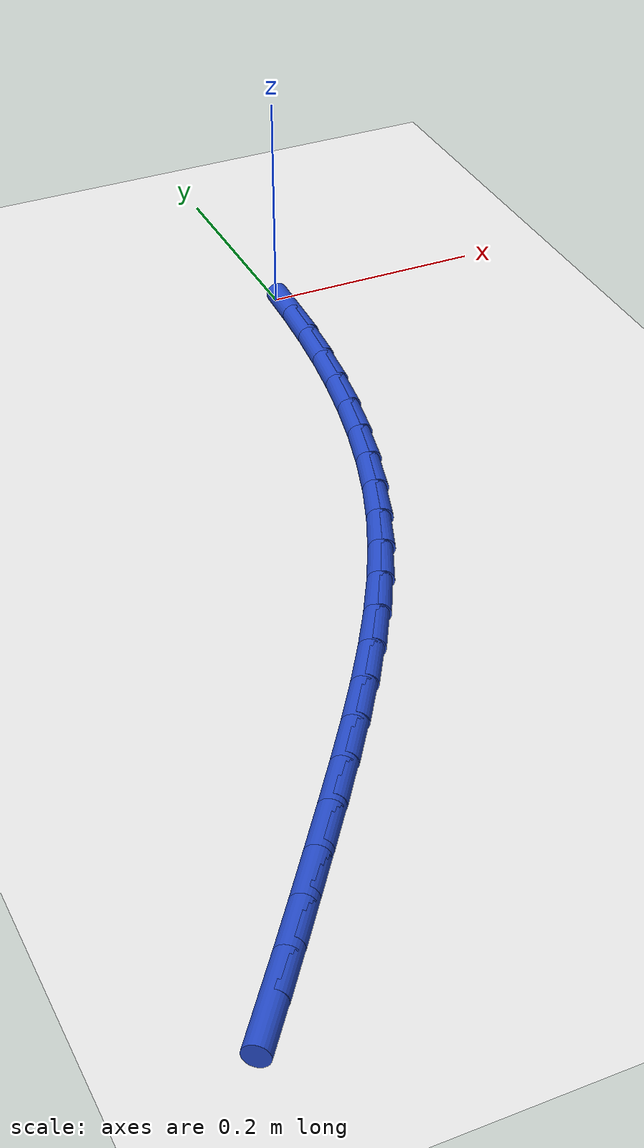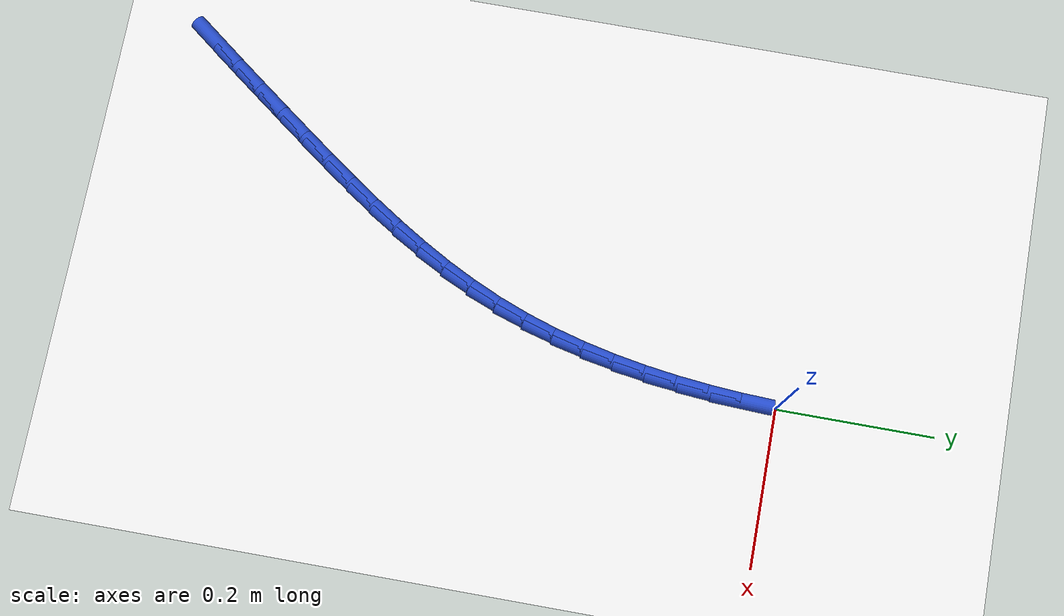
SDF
<sdf version="1.6">
 <world name="default">
  <model name="ground_plane">
   <static>1</static>
   <link name="link">
    <collision name="collision">
     <geometry><plane><normal>0 0 1</normal><size>100 100</size></plane></geometry>
     <surface><friction><ode><mu>100</mu><mu2>50</mu2></ode></friction></surface>
    </collision>
    <visual name="visual">
     <cast_shadows>0</cast_shadows>
     <geometry><plane><normal>0 0 1</normal><size>100 100</size></plane></geometry>
     <material>
      <script><uri>file://media/materials/scripts/gazebo.material</uri><name>Gazebo/WhiteGlow</name></script>
     </material>
    </visual>
   </link>
  </model>
  <model name="line">
   <link name="link_149">
    <pose>-0.34290889383774265 -0.7830838202109409 0.01 0 1.57 0.9205114999771896</pose>
    <collision name="collision">
     <geometry><cylinder><radius>0.01</radius><length>0.08</length></cylinder></geometry>
    </collision>
    <visual name="visual">
     <material>
      <script><name>Gazebo/Blue</name><uri>file://media/materials/scripts/gazebo.material</uri></script>
     </material>
     <geometry><cylinder><radius>0.01</radius><length>0.08</length></cylinder></geometry>
    </visual>
   </link>
   <link name="link_150">
    <pose>-0.3162335976058807 -0.7480149205997997 0.01 0 1.57 0.928915914269752</pose>
    <collision name="collision">
     <geometry><cylinder><radius>0.01</radius><length>0.08</length></cylinder></geometry>
    </collision>
    <visual name="visual">
     <material>
      <script><name>Gazebo/Blue</name><uri>file://media/materials/scripts/gazebo.material</uri></script>
     </material>
     <geometry><cylinder><radius>0.01</radius><length>0.08</length></cylinder></geometry>
    </visual>
   </link>
   <link name="link_151">
    <pose>-0.2899848914134119 -0.7128982197178919 0.01 0 1.57 0.9338424383051132</pose>
    <collision name="collision">
     <geometry><cylinder><radius>0.01</radius><length>0.08</length></cylinder></geometry>
    </collision>
    <visual name="visual">
     <material>
      <script><name>Gazebo/Blue</name><uri>file://media/materials/scripts/gazebo.material</uri></script>
     </material>
     <geometry><cylinder><radius>0.01</radius><length>0.08</length></cylinder></geometry>
    </visual>
   </link>
   <link name="link_152">
    <pose>-0.26412248459578164 -0.6779405091965586 0.01 0 1.57 0.9362782965477401</pose>
    <collision name="collision">
     <geometry><cylinder><radius>0.01</radius><length>0.08</length></cylinder></geometry>
    </collision>
    <visual name="visual">
     <material>
      <script><name>Gazebo/Blue</name><uri>file://media/materials/scripts/gazebo.material</uri></script>
     </material>
     <geometry><cylinder><radius>0.01</radius><length>0.08</length></cylinder></geometry>
    </visual>
   </link>
   <link name="link_153">
    <pose>-0.2386315818441407 -0.6433088360417636 0.01 0 1.57 0.9421647737741907</pose>
    <collision name="collision">
     <geometry><cylinder><radius>0.01</radius><length>0.08</length></cylinder></geometry>
    </collision>
    <visual name="visual">
     <material>
      <script><name>Gazebo/Blue</name><uri>file://media/materials/scripts/gazebo.material</uri></script>
     </material>
     <geometry><cylinder><radius>0.01</radius><length>0.08</length></cylinder></geometry>
    </visual>
   </link>
   <link name="link_154">
    <pose>-0.21364491481321773 -0.6089402679656787 0.01 0 1.57 0.9538058838272021</pose>
    <collision name="collision">
     <geometry><cylinder><radius>0.01</radius><length>0.08</length></cylinder></geometry>
    </collision>
    <visual name="visual">
     <material>
      <script><name>Gazebo/Blue</name><uri>file://media/materials/scripts/gazebo.material</uri></script>
     </material>
     <geometry><cylinder><radius>0.01</radius><length>0.08</length></cylinder></geometry>
    </visual>
   </link>
   <link name="link_155">
    <pose>-0.18934815535599422 -0.5746893443811517 0.01 0 1.57 0.9713988659198854</pose>
    <collision name="collision">
     <geometry><cylinder><radius>0.01</radius><length>0.08</length></cylinder></geometry>
    </collision>
    <visual name="visual">
     <material>
      <script><name>Gazebo/Blue</name><uri>file://media/materials/scripts/gazebo.material</uri></script>
     </material>
     <geometry><cylinder><radius>0.01</radius><length>0.08</length></cylinder></geometry>
    </visual>
   </link>
   <link name="link_156">
    <pose>-0.16592704377617376 -0.5404104979934294 0.01 0 1.57 0.9951212083077166</pose>
    <collision name="collision">
     <geometry><cylinder><radius>0.01</radius><length>0.08</length></cylinder></geometry>
    </collision>
    <visual name="visual">
     <material>
      <script><name>Gazebo/Blue</name><uri>file://media/materials/scripts/gazebo.material</uri></script>
     </material>
     <geometry><cylinder><radius>0.01</radius><length>0.08</length></cylinder></geometry>
    </visual>
   </link>
   <link name="link_157">
    <pose>-0.14356732037745976 -0.5059581615077582 0.01 0 1.57 1.0251120330388628</pose>
    <collision name="collision">
     <geometry><cylinder><radius>0.01</radius><length>0.08</length></cylinder></geometry>
    </collision>
    <visual name="visual">
     <material>
      <script><name>Gazebo/Blue</name><uri>file://media/materials/scripts/gazebo.material</uri></script>
     </material>
     <geometry><cylinder><radius>0.01</radius><length>0.08</length></cylinder></geometry>
    </visual>
   </link>
   <link name="link_158">
    <pose>-0.12245472546355521 -0.47118676762938455 0.01 0 1.57 1.0614417711965463</pose>
    <collision name="collision">
     <geometry><cylinder><radius>0.01</radius><length>0.08</length></cylinder></geometry>
    </collision>
    <visual name="visual">
     <material>
      <script><name>Gazebo/Blue</name><uri>file://media/materials/scripts/gazebo.material</uri></script>
     </material>
     <geometry><cylinder><radius>0.01</radius><length>0.08</length></cylinder></geometry>
    </visual>
   </link>
   <link name="link_159">
    <pose>-0.10277499933816439 -0.43595074906355624 0.01 0 1.57 1.1040733777698457</pose>
    <collision name="collision">
     <geometry><cylinder><radius>0.01</radius><length>0.08</length></cylinder></geometry>
    </collision>
    <visual name="visual">
     <material>
      <script><name>Gazebo/Blue</name><uri>file://media/materials/scripts/gazebo.material</uri></script>
     </material>
     <geometry><cylinder><radius>0.01</radius><length>0.08</length></cylinder></geometry>
    </visual>
   </link>
   <link name="link_160">
    <pose>-0.08471388230499032 -0.40010453851551914 0.01 0 1.57 1.1528178378580318</pose>
    <collision name="collision">
     <geometry><cylinder><radius>0.01</radius><length>0.08</length></cylinder></geometry>
    </collision>
    <visual name="visual">
     <material>
      <script><name>Gazebo/Blue</name><uri>file://media/materials/scripts/gazebo.material</uri></script>
     </material>
     <geometry><cylinder><radius>0.01</radius><length>0.08</length></cylinder></geometry>
    </visual>
   </link>
   <link name="link_161">
    <pose>-0.06845711466773642 -0.3635025686905202 0.01 0 1.57 1.2061260311801272</pose>
    <collision name="collision">
     <geometry><cylinder><radius>0.01</radius><length>0.08</length></cylinder></geometry>
    </collision>
    <visual name="visual">
     <material>
      <script><name>Gazebo/Blue</name><uri>file://media/materials/scripts/gazebo.material</uri></script>
     </material>
     <geometry><cylinder><radius>0.01</radius><length>0.08</length></cylinder></geometry>
    </visual>
   </link>
   <link name="link_162">
    <pose>-0.05415104065360601 -0.3260270240766237 0.01 0 1.57 1.25798229550556</pose>
    <collision name="collision">
     <geometry><cylinder><radius>0.01</radius><length>0.08</length></cylinder></geometry>
    </collision>
    <visual name="visual">
     <material>
      <script><name>Gazebo/Blue</name><uri>file://media/materials/scripts/gazebo.material</uri></script>
     </material>
     <geometry><cylinder><radius>0.01</radius><length>0.08</length></cylinder></geometry>
    </visual>
   </link>
   <link name="link_163">
    <pose>-0.041752692976208504 -0.2876934458937534 0.01 0 1.57 1.306521426923087</pose>
    <collision name="collision">
     <geometry><cylinder><radius>0.01</radius><length>0.08</length></cylinder></geometry>
    </collision>
    <visual name="visual">
     <material>
      <script><name>Gazebo/Blue</name><uri>file://media/materials/scripts/gazebo.material</uri></script>
     </material>
     <geometry><cylinder><radius>0.01</radius><length>0.08</length></cylinder></geometry>
    </visual>
   </link>
   <link name="link_164">
    <pose>-0.031162309832993944 -0.24855738312955528 0.01 0 1.57 1.351666180326094</pose>
    <collision name="collision">
     <geometry><cylinder><radius>0.01</radius><length>0.08</length></cylinder></geometry>
    </collision>
    <visual name="visual">
     <material>
      <script><name>Gazebo/Blue</name><uri>file://media/materials/scripts/gazebo.material</uri></script>
     </material>
     <geometry><cylinder><radius>0.01</radius><length>0.08</length></cylinder></geometry>
    </visual>
   </link>
   <link name="link_165">
    <pose>-0.022280118613398812 -0.20867439238516317 0.01 0 1.57 1.3934104252489918</pose>
    <collision name="collision">
     <geometry><cylinder><radius>0.01</radius><length>0.08</length></cylinder></geometry>
    </collision>
    <visual name="visual">
     <material>
      <script><name>Gazebo/Blue</name><uri>file://media/materials/scripts/gazebo.material</uri></script>
     </material>
     <geometry><cylinder><radius>0.01</radius><length>0.08</length></cylinder></geometry>
    </visual>
   </link>
   <link name="link_166">
    <pose>-0.015006346706859833 -0.16810003026171155 0.01 0 1.57 1.4318027137037876</pose>
    <collision name="collision">
     <geometry><cylinder><radius>0.01</radius><length>0.08</length></cylinder></geometry>
    </collision>
    <visual name="visual">
     <material>
      <script><name>Gazebo/Blue</name><uri>file://media/materials/scripts/gazebo.material</uri></script>
     </material>
     <geometry><cylinder><radius>0.01</radius><length>0.08</length></cylinder></geometry>
    </visual>
   </link>
   <link name="link_167">
    <pose>-0.009241221502813743 -0.12688985336033506 0.01 0 1.57 1.4669310582045427</pose>
    <collision name="collision">
     <geometry><cylinder><radius>0.01</radius><length>0.08</length></cylinder></geometry>
    </collision>
    <visual name="visual">
     <material>
      <script><name>Gazebo/Blue</name><uri>file://media/materials/scripts/gazebo.material</uri></script>
     </material>
     <geometry><cylinder><radius>0.01</radius><length>0.08</length></cylinder></geometry>
    </visual>
   </link>
   <link name="link_168">
    <pose>-0.004884970390697185 -0.0850994182821673 0.01 0 1.57 1.4989095473939618</pose>
    <collision name="collision">
     <geometry><cylinder><radius>0.01</radius><length>0.08</length></cylinder></geometry>
    </collision>
    <visual name="visual">
     <material>
      <script><name>Gazebo/Blue</name><uri>file://media/materials/scripts/gazebo.material</uri></script>
     </material>
     <geometry><cylinder><radius>0.01</radius><length>0.08</length></cylinder></geometry>
    </visual>
   </link>
   <link name="link_169">
    <pose>-0.001837820759947057 -0.042784281628344405 0.01 0 1.57 1.5278672048792197</pose>
    <collision name="collision">
     <geometry><cylinder><radius>0.01</radius><length>0.08</length></cylinder></geometry>
    </collision>
    <visual name="visual">
     <material>
      <script><name>Gazebo/Blue</name><uri>file://media/materials/scripts/gazebo.material</uri></script>
     </material>
     <geometry><cylinder><radius>0.01</radius><length>0.08</length></cylinder></geometry>
    </visual>
   </link>
  </model>
 </world>
</sdf>
